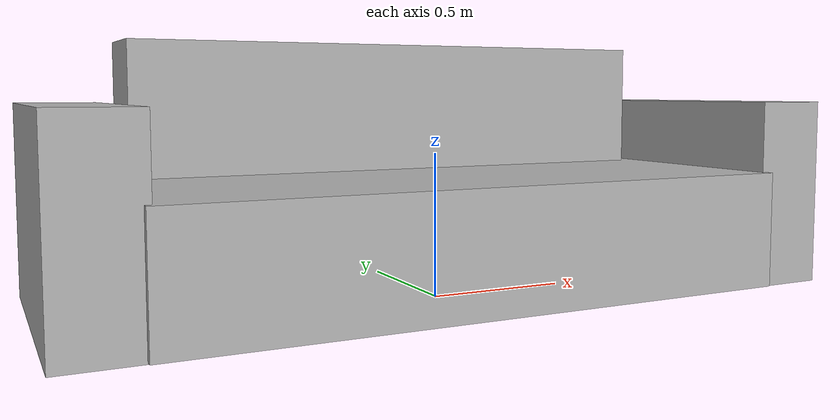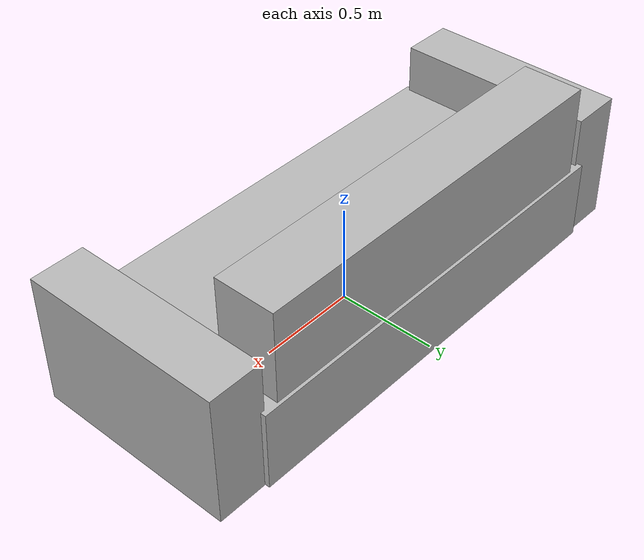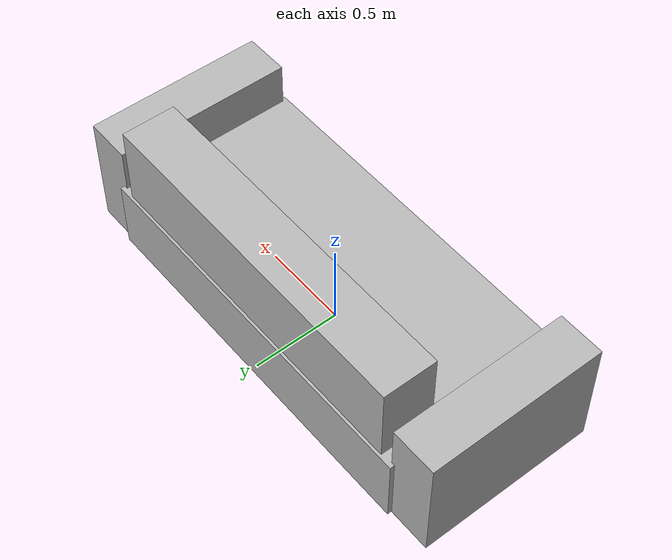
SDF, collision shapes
<?xml version="1.0"?>
<sdf version="1.9">
  <model name="sofa">
    <static>true</static>
    <link name="body">
      <!-- Four-block sofa collision: main body, two arms, and one backrest. -->
      <collision name="body_collision">
        <pose>0 0.02 0.23 0 0 0</pose>
        <geometry><box><size>2.12 1.05 0.4</size></box></geometry>
      </collision>
      <collision name="left_arm_collision">
        <pose>-1.17 0.02 0.35 0 0 0</pose>
        <geometry><box><size>0.26 1 0.65</size></box></geometry>
      </collision>
      <collision name="right_arm_collision">
        <pose>1.17 0.02 0.35 0 0 0</pose>
        <geometry><box><size>0.26 1 0.65</size></box></geometry>
      </collision>
      <collision name="back_collision">
        <pose>0 0.38 0.58 0 0 0</pose>
        <geometry><box><size>1.96 0.3 0.6</size></box></geometry>
      </collision>

      <visual name="sofa_visual">
        <pose>0 0.021 0.001 0 0 0</pose>
        <geometry>
          <mesh>
            <uri>model://Sofa/meshes/Sofa.obj</uri>
            <scale>1.46 1.00 1.00</scale>
          </mesh>
        </geometry>
      </visual>
    </link>
  </model>
</sdf>
